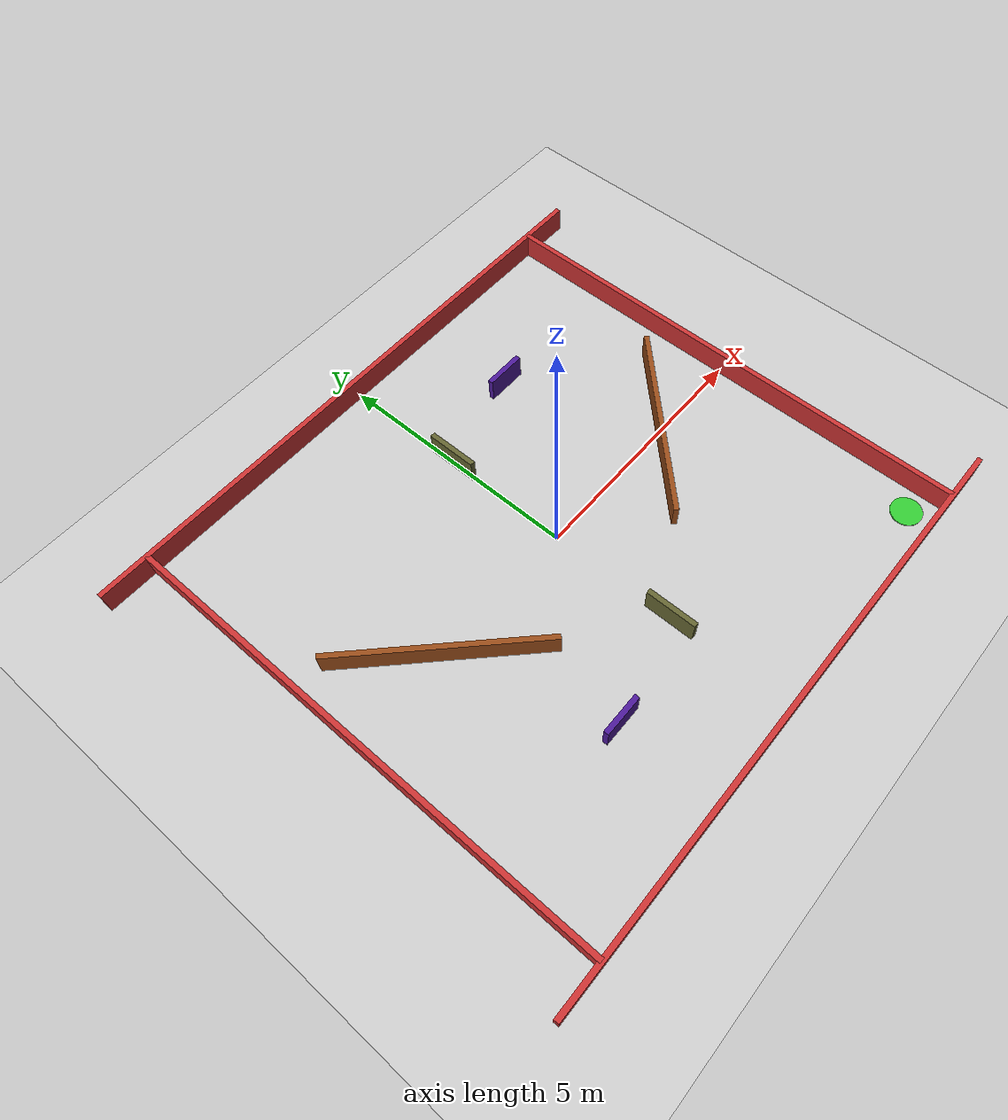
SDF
<!-- lr_turtlebot_sim/worlds/maze3.world -->
<?xml version="1.0"?>
<sdf version="1.6">
  <world name="maze3">
    <include>
      <uri>model://sun</uri>
    </include>

    <include>
      <uri>model://ground_plane</uri>
    </include>

    <!-- Maze 3: "The Final Exam" - Complex -->

    <!-- Outer walls -->
    <model name="outer_north">
      <pose>0 5 0.25 0 0 0</pose>
      <static>true</static>
      <link name="link">
        <collision name="collision">
          <geometry><box><size>12 0.1 0.5</size></box></geometry>
        </collision>
        <visual name="visual">
          <geometry><box><size>12 0.1 0.5</size></box></geometry>
          <material><ambient>0.8 0.2 0.2 1</ambient></material>
        </visual>
      </link>
    </model>

    <model name="outer_south">
      <pose>0 -5 0.25 0 0 0</pose>
      <static>true</static>
      <link name="link">
        <collision name="collision">
          <geometry><box><size>12 0.1 0.5</size></box></geometry>
        </collision>
        <visual name="visual">
          <geometry><box><size>12 0.1 0.5</size></box></geometry>
          <material><ambient>0.8 0.2 0.2 1</ambient></material>
        </visual>
      </link>
    </model>

    <model name="outer_east">
      <pose>5 0 0.25 0 0 1.5708</pose>
      <static>true</static>
      <link name="link">
        <collision name="collision">
          <geometry><box><size>10 0.1 0.5</size></box></geometry>
        </collision>
        <visual name="visual">
          <geometry><box><size>10 0.1 0.5</size></box></geometry>
          <material><ambient>0.8 0.2 0.2 1</ambient></material>
        </visual>
      </link>
    </model>

    <model name="outer_west">
      <pose>-5 0 0.25 0 0 1.5708</pose>
      <static>true</static>
      <link name="link">
        <collision name="collision">
          <geometry><box><size>10 0.1 0.5</size></box></geometry>
        </collision>
        <visual name="visual">
          <geometry><box><size>10 0.1 0.5</size></box></geometry>
          <material><ambient>0.8 0.2 0.2 1</ambient></material>
        </visual>
      </link>
    </model>

    <!-- Complex inner maze -->

    <!-- Zig-zag pattern -->
    <model name="zigzag_1">
      <pose>3 0 0.25 0 0 0.7854</pose>
      <static>true</static>
      <link name="link">
        <collision name="collision">
          <geometry><box><size>4 0.1 0.5</size></box></geometry>
        </collision>
        <visual name="visual">
          <geometry><box><size>4 0.1 0.5</size></box></geometry>
          <material><ambient>0.6 0.3 0.1 1</ambient></material>
        </visual>
      </link>
    </model>

    <model name="zigzag_2">
      <pose>-3 0 0.25 0 0 -0.7854</pose>
      <static>true</static>
      <link name="link">
        <collision name="collision">
          <geometry><box><size>4 0.1 0.5</size></box></geometry>
        </collision>
        <visual name="visual">
          <geometry><box><size>4 0.1 0.5</size></box></geometry>
          <material><ambient>0.6 0.3 0.1 1</ambient></material>
        </visual>
      </link>
    </model>

    <!-- Narrow corridor -->
    <model name="corridor_1">
      <pose>0 2.5 0.25 0 0 1.5708</pose>
      <static>true</static>
      <link name="link">
        <collision name="collision">
          <geometry><box><size>1 0.1 0.5</size></box></geometry>
        </collision>
        <visual name="visual">
          <geometry><box><size>1 0.1 0.5</size></box></geometry>
          <material><ambient>0.4 0.4 0.2 1</ambient></material>
        </visual>
      </link>
    </model>

    <model name="corridor_2">
      <pose>0 -2.5 0.25 0 0 1.5708</pose>
      <static>true</static>
      <link name="link">
        <collision name="collision">
          <geometry><box><size>1 0.1 0.5</size></box></geometry>
        </collision>
        <visual name="visual">
          <geometry><box><size>1 0.1 0.5</size></box></geometry>
          <material><ambient>0.4 0.4 0.2 1</ambient></material>
        </visual>
      </link>
    </model>

    <!-- Choke points -->
    <model name="choke_1">
      <pose>2 3 0.25 0 0 0</pose>
      <static>true</static>
      <link name="link">
        <collision name="collision">
          <geometry><box><size>0.8 0.1 0.5</size></box></geometry>
        </collision>
        <visual name="visual">
          <geometry><box><size>0.8 0.1 0.5</size></box></geometry>
          <material><ambient>0.3 0.1 0.6 1</ambient></material>
        </visual>
      </link>
    </model>

    <model name="choke_2">
      <pose>-2 -3 0.25 0 0 0</pose>
      <static>true</static>
      <link name="link">
        <collision name="collision">
          <geometry><box><size>0.8 0.1 0.5</size></box></geometry>
        </collision>
        <visual name="visual">
          <geometry><box><size>0.8 0.1 0.5</size></box></geometry>
          <material><ambient>0.3 0.1 0.6 1</ambient></material>
        </visual>
      </link>
    </model>

    <!-- Goal (hard to reach) -->
    <model name="goal">
      <pose>4.5 -4.5 0.01 0 0 0</pose>
      <static>true</static>
      <link name="link">
        <visual name="visual">
          <geometry><cylinder><radius>0.3</radius><length>0.02</length></cylinder></geometry>
          <material><ambient>0.2 0.8 0.2 1</ambient></material>
        </visual>
      </link>
    </model>
  </world>
</sdf>
